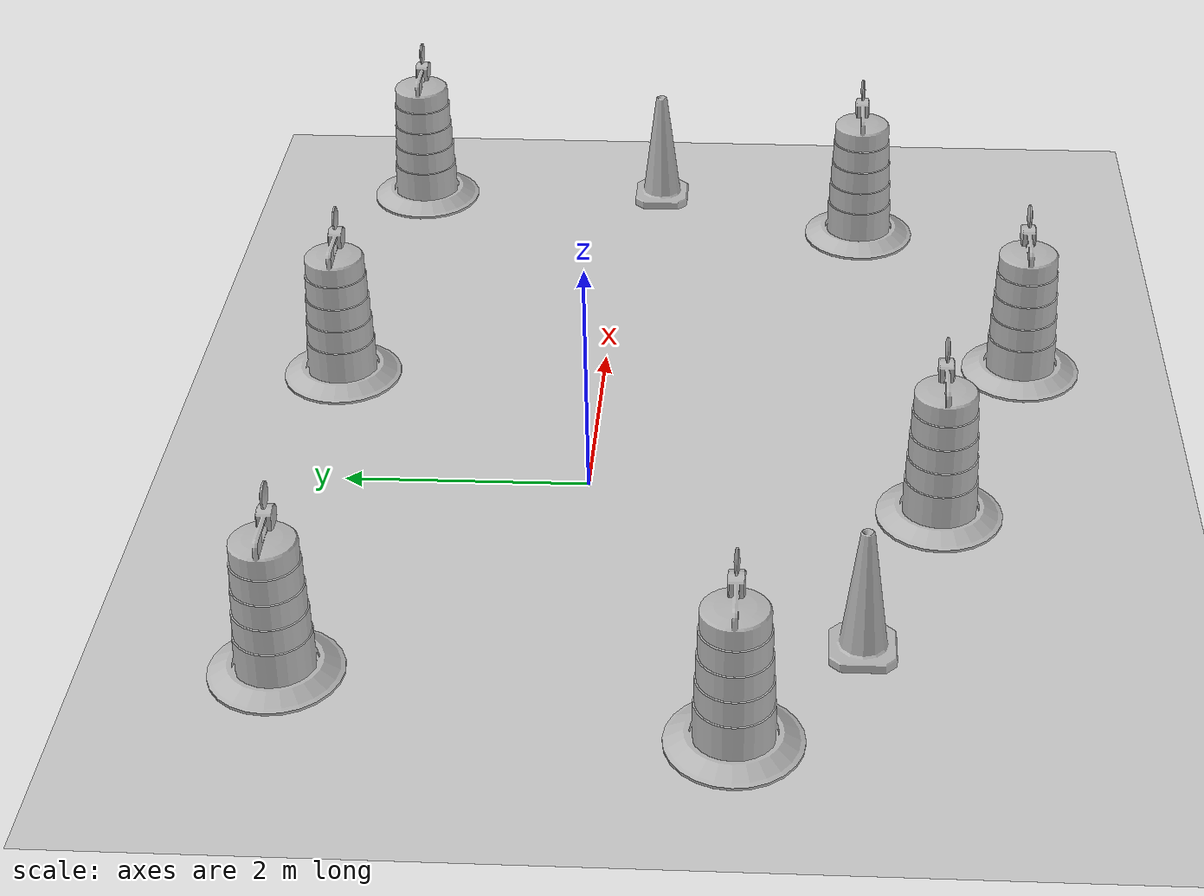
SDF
<sdf version="1.7">
 <world name="default">
  <light name="sun" type="directional">
   <pose>0 0 10 0 -0 0</pose>
   <diffuse>0.8 0.8 0.8 1</diffuse>
   <specular>0.2 0.2 0.2 1</specular>
   <attenuation>
    <range>1000</range>
    <constant>0.9</constant>
    <linear>0.01</linear>
    <quadratic>0.001</quadratic>
   </attenuation>
   <direction>-0.5 0.1 -0.9</direction>
   <spot><inner_angle>0</inner_angle><outer_angle>0</outer_angle><falloff>0</falloff></spot>
  </light>
  <model name="ground_plane">
   <static>1</static>
   <link name="link">
    <collision name="collision">
     <geometry><plane><normal>0 0 1</normal><size>100 100</size></plane></geometry>
     <surface>
      <contact><collide_bitmask>65535</collide_bitmask></contact>
      <friction><ode><mu>100</mu><mu2>50</mu2></ode></friction>
     </surface>
    </collision>
    <visual name="visual">
     <cast_shadows>0</cast_shadows>
     <geometry><plane><normal>0 0 1</normal><size>100 100</size></plane></geometry>
     <material>
      <script><uri>file://media/materials/scripts/gazebo.material</uri><name>Gazebo/Grey</name></script>
     </material>
    </visual>
   </link>
  </model>
  <gravity>0 0 -9.8</gravity>
  <magnetic_field>6e-06 2.3e-05 -4.2e-05</magnetic_field>
  <atmosphere type="adiabatic"/>
  <physics type="ode">
   <max_step_size>0.001</max_step_size>
   <real_time_factor>1</real_time_factor>
   <real_time_update_rate>1000</real_time_update_rate>
  </physics>
  <scene><ambient>0.4 0.4 0.4 1</ambient><background>0.7 0.7 0.7 1</background><shadows>1</shadows></scene>
  <audio><device>default</device></audio>
  <spherical_coordinates>
   <surface_model>EARTH_WGS84</surface_model>
   <latitude_deg>0</latitude_deg>
   <longitude_deg>0</longitude_deg>
   <elevation>0</elevation>
   <heading_deg>0</heading_deg>
  </spherical_coordinates>
  <model name="Construction Barrel">
   <link name="link">
    <inertial>
     <pose>0 0 0.4 0 -0 0</pose>
     <mass>500</mass>
     <inertia><ixx>51.2096</ixx><iyy>51.2096</iyy><izz>25</izz><ixy>0</ixy><ixz>0</ixz><iyz>0</iyz></inertia>
    </inertial>
    <collision name="collision">
     <geometry><mesh><uri>model://construction_barrel/meshes/construction_barrel.dae</uri></mesh></geometry>
    </collision>
    <visual name="visual">
     <geometry><mesh><uri>model://construction_barrel/meshes/construction_barrel.dae</uri></mesh></geometry>
    </visual>
   </link>
   <pose>1.62292 2.28621 -5e-06 -9e-06 -9e-06 -2.2e-05</pose>
  </model>
  <model name="Construction Barrel_clone">
   <link name="link">
    <inertial>
     <pose>0 0 0.4 0 -0 0</pose>
     <mass>500</mass>
     <inertia><ixx>51.2096</ixx><iyy>51.2096</iyy><izz>25</izz><ixy>0</ixy><ixz>0</ixz><iyz>0</iyz></inertia>
    </inertial>
    <collision name="collision">
     <geometry><mesh><uri>model://construction_barrel/meshes/construction_barrel.dae</uri></mesh></geometry>
    </collision>
    <visual name="visual">
     <geometry><mesh><uri>model://construction_barrel/meshes/construction_barrel.dae</uri></mesh></geometry>
    </visual>
   </link>
   <pose>-2.50287 2.10164 0 0 0 -2.6e-05</pose>
  </model>
  <model name="Construction Barrel_clone_0">
   <link name="link">
    <inertial>
     <pose>0 0 0.4 0 -0 0</pose>
     <mass>500</mass>
     <inertia><ixx>51.2096</ixx><iyy>51.2096</iyy><izz>25</izz><ixy>0</ixy><ixz>0</ixz><iyz>0</iyz></inertia>
    </inertial>
    <collision name="collision">
     <geometry><mesh><uri>model://construction_barrel/meshes/construction_barrel.dae</uri></mesh></geometry>
    </collision>
    <visual name="visual">
     <geometry><mesh><uri>model://construction_barrel/meshes/construction_barrel.dae</uri></mesh></geometry>
    </visual>
   </link>
   <pose>-3.14169 -1.27075 0 0 0 -1.9e-05</pose>
  </model>
  <model name="Construction Barrel_clone_1">
   <link name="link">
    <inertial>
     <pose>0 0 0.4 0 -0 0</pose>
     <mass>500</mass>
     <inertia><ixx>51.2096</ixx><iyy>51.2096</iyy><izz>25</izz><ixy>0</ixy><ixz>0</ixz><iyz>0</iyz></inertia>
    </inertial>
    <collision name="collision">
     <geometry><mesh><uri>model://construction_barrel/meshes/construction_barrel.dae</uri></mesh></geometry>
    </collision>
    <visual name="visual">
     <geometry><mesh><uri>model://construction_barrel/meshes/construction_barrel.dae</uri></mesh></geometry>
    </visual>
   </link>
   <pose>-0.299535 -2.83553 -2e-06 -5e-06 -4e-06 -2e-05</pose>
  </model>
  <model name="Construction Barrel_clone_3">
   <link name="link">
    <inertial>
     <pose>0 0 0.4 0 -0 0</pose>
     <mass>500</mass>
     <inertia><ixx>51.2096</ixx><iyy>51.2096</iyy><izz>25</izz><ixy>0</ixy><ixz>0</ixz><iyz>0</iyz></inertia>
    </inertial>
    <collision name="collision">
     <geometry><mesh><uri>model://construction_barrel/meshes/construction_barrel.dae</uri></mesh></geometry>
    </collision>
    <visual name="visual">
     <geometry><mesh><uri>model://construction_barrel/meshes/construction_barrel.dae</uri></mesh></geometry>
    </visual>
   </link>
   <pose>4.99994 1.99998 -5e-06 -7e-06 -1e-05 -1.9e-05</pose>
  </model>
  <model name="Construction Barrel_clone_2">
   <link name="link">
    <inertial>
     <pose>0 0 0.4 0 -0 0</pose>
     <mass>500</mass>
     <inertia><ixx>51.2096</ixx><iyy>51.2096</iyy><izz>25</izz><ixy>0</ixy><ixz>0</ixz><iyz>0</iyz></inertia>
    </inertial>
    <collision name="collision">
     <geometry><mesh><uri>model://construction_barrel/meshes/construction_barrel.dae</uri></mesh></geometry>
    </collision>
    <visual name="visual">
     <geometry><mesh><uri>model://construction_barrel/meshes/construction_barrel.dae</uri></mesh></geometry>
    </visual>
   </link>
   <pose>4.37104 -2.25879 -2e-06 6e-06 -4e-06 -1.4e-05</pose>
  </model>
  <model name="Construction Barrel_clone_4">
   <link name="link">
    <inertial>
     <pose>0 0 0.4 0 -0 0</pose>
     <mass>500</mass>
     <inertia><ixx>51.2096</ixx><iyy>51.2096</iyy><izz>25</izz><ixy>0</ixy><ixz>0</ixz><iyz>0</iyz></inertia>
    </inertial>
    <collision name="collision">
     <geometry><mesh><uri>model://construction_barrel/meshes/construction_barrel.dae</uri></mesh></geometry>
    </collision>
    <visual name="visual">
     <geometry><mesh><uri>model://construction_barrel/meshes/construction_barrel.dae</uri></mesh></geometry>
    </visual>
   </link>
   <pose>1.9299 -3.63772 -1e-06 1e-06 4e-06 -1.9e-05</pose>
  </model>
  <model name="Construction Cone">
   <link name="link">
    <collision name="collision">
     <geometry>
      <mesh><scale>10 10 10</scale><uri>model://construction_cone/meshes/construction_cone.dae</uri></mesh>
     </geometry>
    </collision>
    <visual name="visual">
     <geometry>
      <mesh><scale>10 10 10</scale><uri>model://construction_cone/meshes/construction_cone.dae</uri></mesh>
     </geometry>
    </visual>
    <inertial>
     <inertia><ixx>1</ixx><ixy>0</ixy><ixz>0</ixz><iyy>1</iyy><iyz>0</iyz><izz>1</izz></inertia>
     <mass>1</mass>
    </inertial>
   </link>
   <pose>-2.07714 -2.19529 -0 0 -0 0</pose>
  </model>
  <model name="Construction Cone_clone">
   <link name="link">
    <collision name="collision">
     <geometry>
      <mesh><scale>10 10 10</scale><uri>model://construction_cone/meshes/construction_cone.dae</uri></mesh>
     </geometry>
    </collision>
    <visual name="visual">
     <geometry>
      <mesh><scale>10 10 10</scale><uri>model://construction_cone/meshes/construction_cone.dae</uri></mesh>
     </geometry>
    </visual>
    <inertial>
     <inertia><ixx>1</ixx><ixy>0</ixy><ixz>0</ixz><iyy>1</iyy><iyz>0</iyz><izz>1</izz></inertia>
     <mass>1</mass>
    </inertial>
   </link>
   <pose>5.0552 -0.331168 -9e-06 3e-06 -0 0</pose>
  </model>
 </world>
</sdf>
